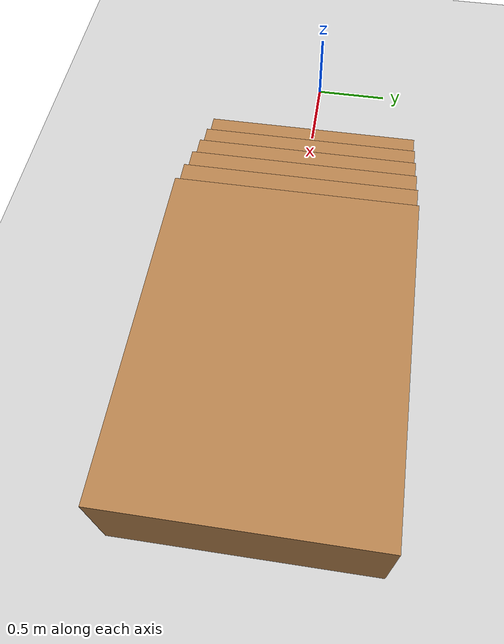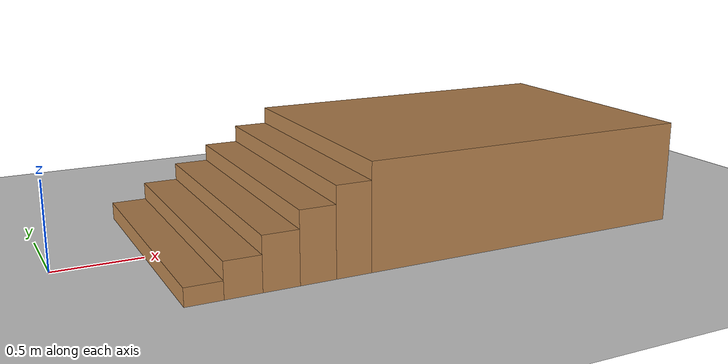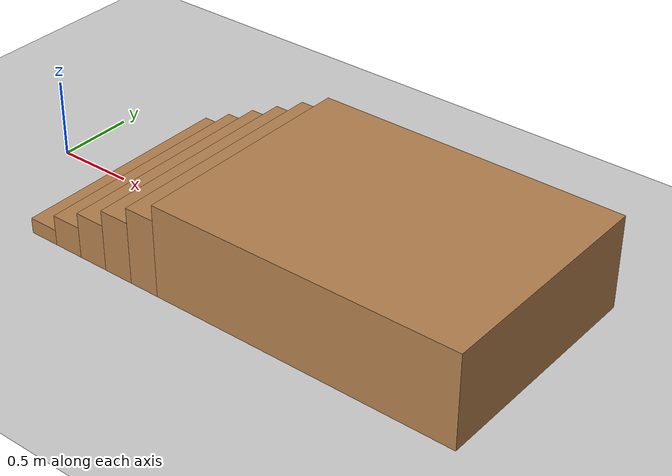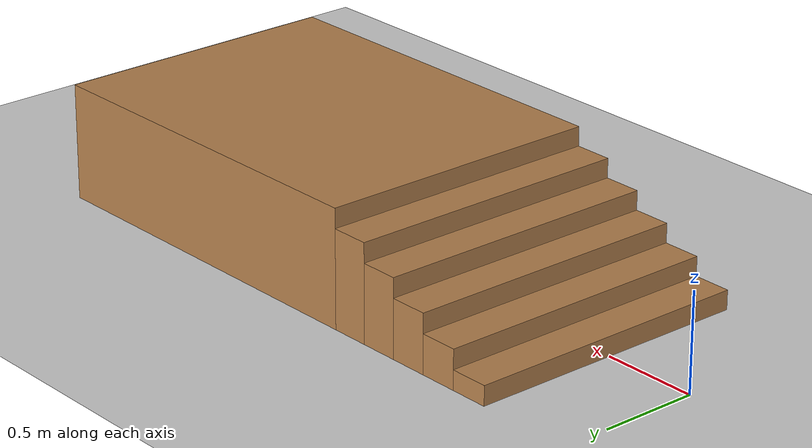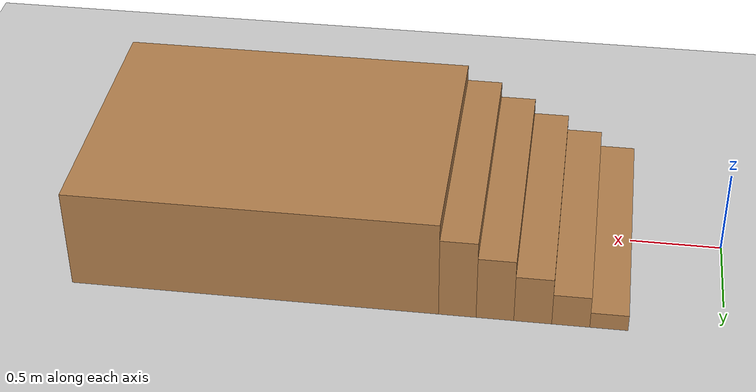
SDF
<?xml version="1.0" ?>
<sdf version="1.4">
  <!-- We use a custom world for the rrbot so that the camera angle is launched correctly -->

  <world name="default">

  <plugin name="xbot2_clock" filename="libxbot2_gz_clock.so"/>

  <gravity>0 0 -9.81</gravity>

  <model name="ground_plane">
    <static>true</static>
    <link name="link">
      <collision name="collision">
        <geometry>
          <plane>
            <normal>0 0 1</normal>
            <size>100 100</size>
          </plane>
        </geometry>
        <surface>
          <friction>
            <ode>
              <mu>1</mu>
              <mu2>1</mu2>
            </ode>
          </friction>
        </surface>
      </collision>
      <visual name="visual">
        <cast_shadows>false</cast_shadows>
        <geometry>
          <plane>
            <normal>0 0 1</normal>
            <size>100 100</size>
          </plane>
        </geometry>
        <material>
          <script>
            <uri>file://media/materials/scripts/gazebo.material</uri>
            <name>Gazebo/Grey</name>
          </script>
        </material>
      </visual>
    </link>
  </model>

  <model name='stair1'>
      <static>true</static>
      <pose frame=''>0.6 0.0 0.05 0 -0 0</pose>
      <link name='link'>
        <collision name='collision'>
          <geometry>
            <box>
              <size>0.2 1.5 0.10</size>
            </box>
          </geometry>
          <max_contacts>10</max_contacts>
          <surface>
            <contact>
              <ode/>
            </contact>
            <bounce/>
            <friction>
              <torsional>
                <ode/>
              </torsional>
              <ode/>
            </friction>
          </surface>
        </collision>
        <visual name='visual'>
          <geometry>
            <box>
              <size>0.2 1.5 0.10</size>
            </box>
          </geometry>
          <material>
            <script>
              <name>Gazebo/WoodPallet</name>
              <uri>file://media/materials/scripts/gazebo.material</uri>
            </script>
          </material>
        </visual>
        <self_collide>0</self_collide>
        <enable_wind>0</enable_wind>
        <kinematic>1</kinematic>
      </link>
    </model>

  <model name='stair2'>
      <static>true</static>
      <pose frame=''>0.8 0.0 0.1 0 -0 0</pose>
      <link name='link'>
        <collision name='collision'>
          <geometry>
            <box>
              <size>0.2 1.5 0.20</size>
            </box>
          </geometry>
          <max_contacts>10</max_contacts>
          <surface>
            <contact>
              <ode/>
            </contact>
            <bounce/>
            <friction>
              <torsional>
                <ode/>
              </torsional>
              <ode/>
            </friction>
          </surface>
        </collision>
        <visual name='visual'>
          <geometry>
            <box>
              <size>0.2 1.5 0.20</size>
            </box>
          </geometry>
          <material>
            <script>
              <name>Gazebo/WoodPallet</name>
              <uri>file://media/materials/scripts/gazebo.material</uri>
            </script>
          </material>
        </visual>
        <self_collide>0</self_collide>
        <enable_wind>0</enable_wind>
        <kinematic>1</kinematic>
      </link>
    </model>

  <model name='stair3'>
      <static>true</static>
      <pose frame=''>1.0 0.0 0.15 0 -0 0</pose>
      <link name='link'>
        <collision name='collision'>
          <geometry>
            <box>
              <size>0.2 1.5 0.30</size>
            </box>
          </geometry>
          <max_contacts>10</max_contacts>
          <surface>
            <contact>
              <ode/>
            </contact>
            <bounce/>
            <friction>
              <torsional>
                <ode/>
              </torsional>
              <ode/>
            </friction>
          </surface>
        </collision>
        <visual name='visual'>
          <geometry>
            <box>
              <size>0.2 1.5 0.30</size>
            </box>
          </geometry>
          <material>
            <script>
              <name>Gazebo/WoodPallet</name>
              <uri>file://media/materials/scripts/gazebo.material</uri>
            </script>
          </material>
        </visual>
        <self_collide>0</self_collide>
        <enable_wind>0</enable_wind>
        <kinematic>1</kinematic>
      </link>
    </model>

  <model name='stair4'>
      <static>true</static>
      <pose frame=''>1.2 0.0 0.2 0 -0 0</pose>
      <link name='link'>
        <collision name='collision'>
          <geometry>
            <box>
              <size>0.2 1.5 0.4</size>
            </box>
          </geometry>
          <max_contacts>10</max_contacts>
          <surface>
            <contact>
              <ode/>
            </contact>
            <bounce/>
            <friction>
              <torsional>
                <ode/>
              </torsional>
              <ode/>
            </friction>
          </surface>
        </collision>
        <visual name='visual'>
          <geometry>
            <box>
              <size>0.2 1.5 0.4</size>
            </box>
          </geometry>
          <material>
            <script>
              <name>Gazebo/WoodPallet</name>
              <uri>file://media/materials/scripts/gazebo.material</uri>
            </script>
          </material>
        </visual>
        <self_collide>0</self_collide>
        <enable_wind>0</enable_wind>
        <kinematic>1</kinematic>
      </link>
    </model>

  <model name='stair5'>
      <static>true</static>
      <pose frame=''>1.4 0.0 0.25 0 -0 0</pose>
      <link name='link'>
        <collision name='collision'>
          <geometry>
            <box>
              <size>0.2 1.5 0.50</size>
            </box>
          </geometry>
          <max_contacts>10</max_contacts>
          <surface>
            <contact>
              <ode/>
            </contact>
            <bounce/>
            <friction>
              <torsional>
                <ode/>
              </torsional>
              <ode/>
            </friction>
          </surface>
        </collision>
        <visual name='visual'>
          <geometry>
            <box>
              <size>0.2 1.5 0.50</size>
            </box>
          </geometry>
          <material>
            <script>
              <name>Gazebo/WoodPallet</name>
              <uri>file://media/materials/scripts/gazebo.material</uri>
            </script>
          </material>
        </visual>
        <self_collide>0</self_collide>
        <enable_wind>0</enable_wind>
        <kinematic>1</kinematic>
      </link>
    </model>

  <model name='stair6'>
      <static>true</static>
      <pose frame=''>2.5 0.0 0.3 0 -0 0</pose>
      <link name='link'>
        <collision name='collision'>
          <geometry>
            <box>
              <size>2.0 1.5 0.6</size>
            </box>
          </geometry>
          <max_contacts>10</max_contacts>
          <surface>
            <contact>
              <ode/>
            </contact>
            <bounce/>
            <friction>
              <torsional>
                <ode/>
              </torsional>
              <ode/>
            </friction>
          </surface>
        </collision>
        <visual name='visual'>
          <geometry>
            <box>
              <size>2.0 1.5 0.6</size>
            </box>
          </geometry>
          <material>
            <script>
              <name>Gazebo/WoodPallet</name>
              <uri>file://media/materials/scripts/gazebo.material</uri>
            </script>
          </material>
        </visual>
        <self_collide>0</self_collide>
        <enable_wind>0</enable_wind>
        <kinematic>1</kinematic>
      </link>
    </model>

    <!-- Global light source -->
    <include>
      <uri>model://sun</uri>
    </include>

    <!-- Focus camera on tall pendulum -->
    <gui fullscreen='0'>
      <camera name='user_camera'>
        <pose>4.927360 -4.376610 3.740080 0.000000 0.275643 2.356190</pose>
        <view_controller>orbit</view_controller>
      </camera>
    </gui>

    <physics name="update_rate" type="ode">
      <real_time_update_rate>4000</real_time_update_rate>
      <max_step_size>0.00025</max_step_size>
      <max_contacts>6</max_contacts>
      <bullet>
      	<solver>
              <iters>100</iters>
              <sor>1.55</sor>
        </solver>
        <constraints>
              <contact_surface_layer>0.002</contact_surface_layer>
              <cfm>0.00005</cfm>
              <erp>0.2</erp>
         </constraints>
       </bullet>

       <ode>
         <solver>
          	<iters>50</iters>
          	<sor>1.20</sor>
         </solver>
         <constraints>
          	<contact_surface_layer>0.0002</contact_surface_layer>
          	<contact_max_correcting_vel>500</contact_max_correcting_vel>
          	<cfm>0.000001</cfm>
          	<erp>0.3</erp>
         </constraints>
       </ode>
    </physics>

  </world>
</sdf>
